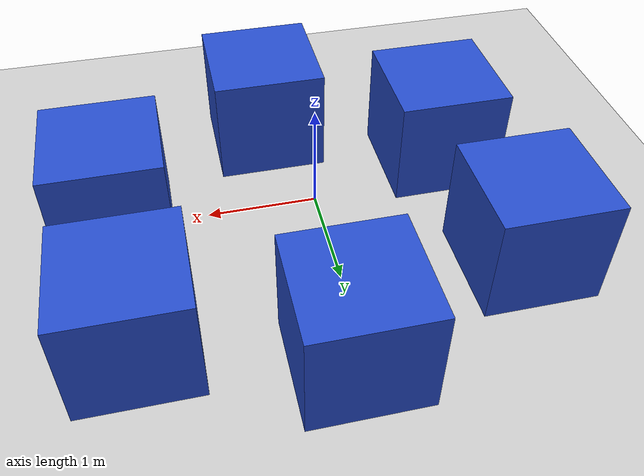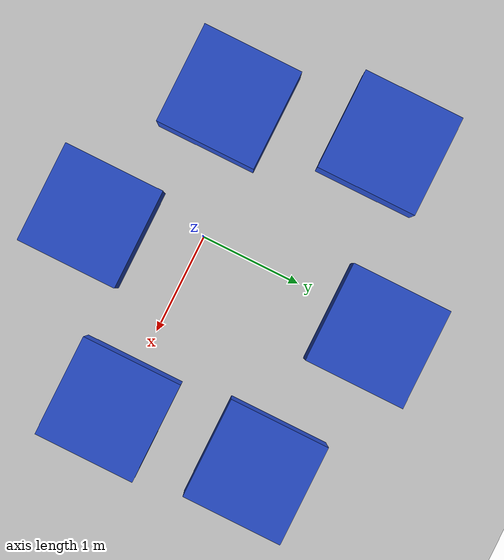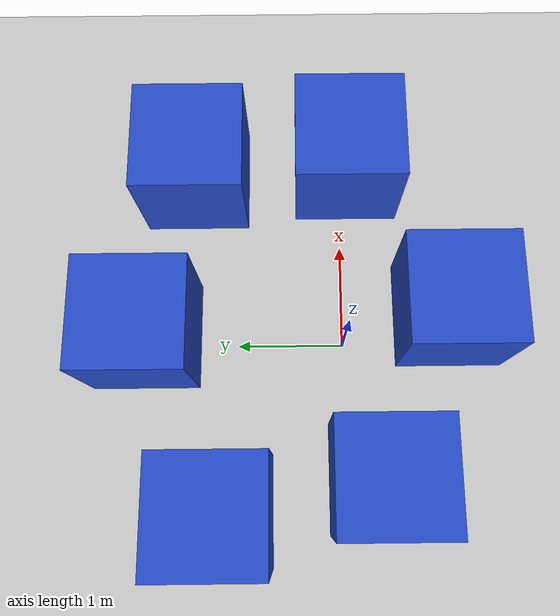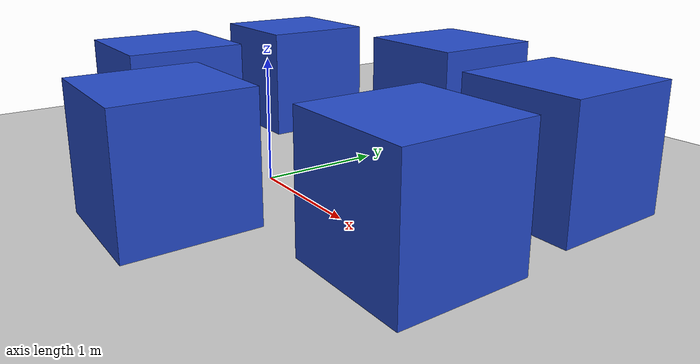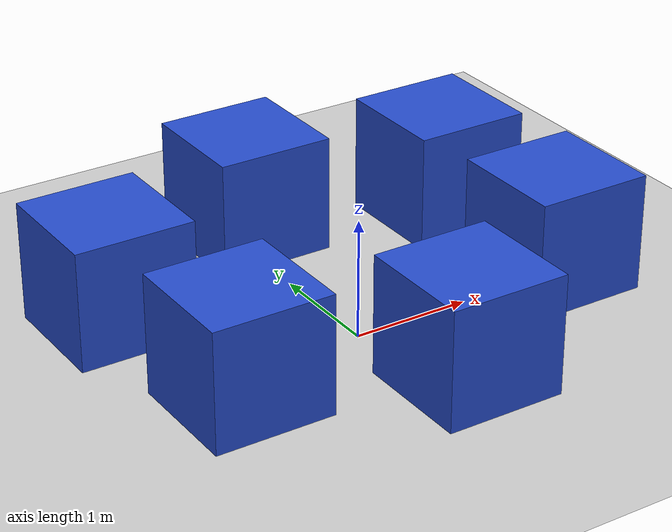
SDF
<sdf version="1.7">
 <world name="default">
  <model name="ground_plane">
   <static>1</static>
   <link name="link">
    <collision name="collision">
     <geometry><plane><normal>0 0 1</normal><size>100 100</size></plane></geometry>
     <surface>
      <contact><collide_bitmask>65535</collide_bitmask></contact>
      <friction><ode><mu>100</mu><mu2>50</mu2></ode></friction>
     </surface>
    </collision>
    <visual name="visual">
     <cast_shadows>0</cast_shadows>
     <geometry><plane><normal>0 0 1</normal><size>100 100</size></plane></geometry>
     <material>
      <script><uri>file://media/materials/scripts/gazebo.material</uri><name>Gazebo/Grey</name></script>
     </material>
    </visual>
   </link>
  </model>
  <gravity>0 0 -9.8</gravity>
  <magnetic_field>6e-06 2.3e-05 -4.2e-05</magnetic_field>
  <atmosphere type="adiabatic"/>
  <physics type="ode">
   <max_step_size>0.001</max_step_size>
   <real_time_factor>1</real_time_factor>
   <real_time_update_rate>1000</real_time_update_rate>
  </physics>
  <scene><ambient>0.4 0.4 0.4 1</ambient><background>0.7 0.7 0.7 1</background><shadows>1</shadows></scene>
  <spherical_coordinates>
   <surface_model>EARTH_WGS84</surface_model>
   <latitude_deg>0</latitude_deg>
   <longitude_deg>0</longitude_deg>
   <elevation>0</elevation>
   <heading_deg>0</heading_deg>
  </spherical_coordinates>
  <light name="user_directional_light_0" type="directional">
   <pose>-5.497 3.87094 1 0 -0 0</pose>
   <diffuse>0.5 0.5 0.5 1</diffuse>
   <specular>0.1 0.1 0.1 1</specular>
   <direction>0.1 0.1 -0.9</direction>
   <attenuation>
    <range>20</range>
    <constant>0.5</constant>
    <linear>0.01</linear>
    <quadratic>0.001</quadratic>
   </attenuation>
   <spot><inner_angle>0</inner_angle><outer_angle>0</outer_angle><falloff>0</falloff></spot>
  </light>
  <light name="user_directional_light_1" type="directional">
   <pose>6.11529 3.52206 1 0 -0 0</pose>
   <diffuse>0.5 0.5 0.5 1</diffuse>
   <specular>0.1 0.1 0.1 1</specular>
   <direction>0.1 0.1 -0.9</direction>
   <attenuation>
    <range>20</range>
    <constant>0.5</constant>
    <linear>0.01</linear>
    <quadratic>0.001</quadratic>
   </attenuation>
   <spot><inner_angle>0</inner_angle><outer_angle>0</outer_angle><falloff>0</falloff></spot>
  </light>
  <light name="user_directional_light_2" type="directional">
   <pose>-6.01965 -5.46938 1 0 -0 0</pose>
   <diffuse>0.5 0.5 0.5 1</diffuse>
   <specular>0.1 0.1 0.1 1</specular>
   <direction>0.1 0.1 -0.9</direction>
   <attenuation>
    <range>20</range>
    <constant>0.5</constant>
    <linear>0.01</linear>
    <quadratic>0.001</quadratic>
   </attenuation>
   <spot><inner_angle>0</inner_angle><outer_angle>0</outer_angle><falloff>0</falloff></spot>
  </light>
  <light name="user_directional_light_3" type="directional">
   <pose>5.9826 -5.40023 1 0 -0 0</pose>
   <diffuse>0.5 0.5 0.5 1</diffuse>
   <specular>0.1 0.1 0.1 1</specular>
   <direction>0.1 0.1 -0.9</direction>
   <attenuation>
    <range>20</range>
    <constant>0.5</constant>
    <linear>0.01</linear>
    <quadratic>0.001</quadratic>
   </attenuation>
   <spot><inner_angle>0</inner_angle><outer_angle>0</outer_angle><falloff>0</falloff></spot>
  </light>
  <model name="unit_box">
   <pose>0.107502 1.85848 0.5 0 -0 0</pose>
   <link name="link">
    <inertial>
     <mass>1</mass>
     <inertia>
      <ixx>0.166667</ixx>
      <ixy>0</ixy>
      <ixz>0</ixz>
      <iyy>0.166667</iyy>
      <iyz>0</iyz>
      <izz>0.166667</izz>
     </inertia>
    </inertial>
    <collision name="collision"><geometry><box><size>1 1 1</size></box></geometry></collision>
    <visual name="visual">
     <geometry><box><size>1 1 1</size></box></geometry>
     <material>
      <script><name>Gazebo/Blue</name><uri>file://media/materials/scripts/gazebo.material</uri></script>
     </material>
    </visual>
   </link>
  </model>
  <model name="unit_box_0">
   <pose>-1.53107 1.16599 0.5 0 -0 0</pose>
   <link name="link">
    <inertial>
     <mass>1</mass>
     <inertia>
      <ixx>0.166667</ixx>
      <ixy>0</ixy>
      <ixz>0</ixz>
      <iyy>0.166667</iyy>
      <iyz>0</iyz>
      <izz>0.166667</izz>
     </inertia>
    </inertial>
    <collision name="collision"><geometry><box><size>1 1 1</size></box></geometry></collision>
    <visual name="visual">
     <geometry><box><size>1 1 1</size></box></geometry>
     <material>
      <script><name>Gazebo/Blue</name><uri>file://media/materials/scripts/gazebo.material</uri></script>
     </material>
    </visual>
   </link>
  </model>
  <model name="unit_box_1">
   <pose>1.7312 1.40793 0.5 0 -0 0</pose>
   <link name="link">
    <inertial>
     <mass>1</mass>
     <inertia>
      <ixx>0.166667</ixx>
      <ixy>0</ixy>
      <ixz>0</ixz>
      <iyy>0.166667</iyy>
      <iyz>0</iyz>
      <izz>0.166667</izz>
     </inertia>
    </inertial>
    <collision name="collision"><geometry><box><size>1 1 1</size></box></geometry></collision>
    <visual name="visual">
     <geometry><box><size>1 1 1</size></box></geometry>
     <material>
      <script><name>Gazebo/Blue</name><uri>file://media/materials/scripts/gazebo.material</uri></script>
     </material>
    </visual>
   </link>
  </model>
  <model name="unit_box_2">
   <pose>-1.25101 -0.349459 0.5 0 -0 0</pose>
   <link name="link">
    <inertial>
     <mass>1</mass>
     <inertia>
      <ixx>0.166667</ixx>
      <ixy>0</ixy>
      <ixz>0</ixz>
      <iyy>0.166667</iyy>
      <iyz>0</iyz>
      <izz>0.166667</izz>
     </inertia>
    </inertial>
    <collision name="collision"><geometry><box><size>1 1 1</size></box></geometry></collision>
    <visual name="visual">
     <geometry><box><size>1 1 1</size></box></geometry>
     <material>
      <script><name>Gazebo/Blue</name><uri>file://media/materials/scripts/gazebo.material</uri></script>
     </material>
    </visual>
   </link>
  </model>
  <model name="unit_box_3">
   <pose>0.298086 -1.00656 0.5 0 -0 0</pose>
   <link name="link">
    <inertial>
     <mass>1</mass>
     <inertia>
      <ixx>0.166667</ixx>
      <ixy>0</ixy>
      <ixz>0</ixz>
      <iyy>0.166667</iyy>
      <iyz>0</iyz>
      <izz>0.166667</izz>
     </inertia>
    </inertial>
    <collision name="collision"><geometry><box><size>1 1 1</size></box></geometry></collision>
    <visual name="visual">
     <geometry><box><size>1 1 1</size></box></geometry>
     <material>
      <script><name>Gazebo/Blue</name><uri>file://media/materials/scripts/gazebo.material</uri></script>
     </material>
    </visual>
   </link>
  </model>
  <model name="unit_box_4">
   <pose>1.82119 -0.065744 0.5 0 -0 0</pose>
   <link name="link">
    <inertial>
     <mass>1</mass>
     <inertia>
      <ixx>0.166667</ixx>
      <ixy>0</ixy>
      <ixz>0</ixz>
      <iyy>0.166667</iyy>
      <iyz>0</iyz>
      <izz>0.166667</izz>
     </inertia>
    </inertial>
    <collision name="collision"><geometry><box><size>1 1 1</size></box></geometry></collision>
    <visual name="visual">
     <geometry><box><size>1 1 1</size></box></geometry>
     <material>
      <script><name>Gazebo/Blue</name><uri>file://media/materials/scripts/gazebo.material</uri></script>
     </material>
    </visual>
   </link>
  </model>
 </world>
</sdf>
